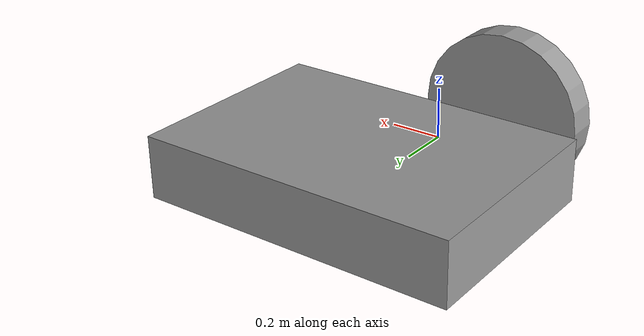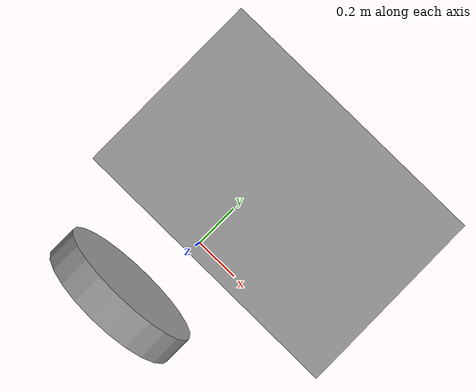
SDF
<?xml version='1.0'?>
<sdf version='1.6'>
  <model name='furiguide_model'>
    <link name='link_2'>
      <pose frame=''>0.08396 0.377328 0 0 -0 0</pose>
      <inertial>
        <mass>0.261553</mass>
        <inertia>
          <ixx>0.0170661</ixx>
          <ixy>0</ixy>
          <ixz>0</ixz>
          <iyy>0.0355383</iyy>
          <iyz>0</iyz>
          <izz>0.0499766</izz>
        </inertia>
        <pose frame=''>0 0 0 0 -0 0</pose>
      </inertial>
      <gravity>1</gravity>
      <self_collide>0</self_collide>
      <kinematic>0</kinematic>
      <visual name='visual'>
        <pose frame=''>0 0 0 0 -0 0</pose>
        <geometry>
          <box>
            <size>1.2531 0.850051 0.245512</size>
          </box>
        </geometry>
        <material>
          <lighting>1</lighting>
          <script>
            <uri>file://media/materials/scripts/gazebo.material</uri>
            <name>Gazebo/Grey</name>
          </script>
          <ambient>0.3 0.3 0.3 1</ambient>
          <diffuse>0.7 0.7 0.7 1</diffuse>
          <specular>0.01 0.01 0.01 1</specular>
          <emissive>0 0 0 1</emissive>
          <shader type='vertex'>
            <normal_map>__default__</normal_map>
          </shader>
        </material>
        <cast_shadows>1</cast_shadows>
        <transparency>0</transparency>
      </visual>
      <collision name='collision'>
        <laser_retro>0</laser_retro>
        <max_contacts>10</max_contacts>
        <pose frame=''>0 0 0 0 -0 0</pose>
        <geometry>
          <box>
            <size>1.2531 0.850051 0.245512</size>
          </box>
        </geometry>
        <surface>
          <friction>
            <ode>
              <mu>1</mu>
              <mu2>1</mu2>
              <fdir1>0 0 0</fdir1>
              <slip1>0</slip1>
              <slip2>0</slip2>
            </ode>
            <torsional>
              <coefficient>1</coefficient>
              <patch_radius>0</patch_radius>
              <surface_radius>0</surface_radius>
              <use_patch_radius>1</use_patch_radius>
              <ode>
                <slip>0</slip>
              </ode>
            </torsional>
          </friction>
          <bounce>
            <restitution_coefficient>0</restitution_coefficient>
            <threshold>1e+06</threshold>
          </bounce>
          <contact>
            <collide_without_contact>0</collide_without_contact>
            <collide_without_contact_bitmask>1</collide_without_contact_bitmask>
            <collide_bitmask>1</collide_bitmask>
            <ode>
              <soft_cfm>0</soft_cfm>
              <soft_erp>0.2</soft_erp>
              <kp>1e+13</kp>
              <kd>1</kd>
              <max_vel>0.01</max_vel>
              <min_depth>0</min_depth>
            </ode>
            <bullet>
              <split_impulse>1</split_impulse>
              <split_impulse_penetration_threshold>-0.01</split_impulse_penetration_threshold>
              <soft_cfm>0</soft_cfm>
              <soft_erp>0.2</soft_erp>
              <kp>1e+13</kp>
              <kd>1</kd>
            </bullet>
          </contact>
        </surface>
      </collision>
    </link>
    <link name='link_5'>
      <pose frame=''>-0.08396 -0.377328 -0 1.5708 -0 0</pose>
      <inertial>
        <mass>0.0570356</mass>
        <inertia>
          <ixx>0.00165223</ixx>
          <ixy>0</ixy>
          <ixz>0</ixz>
          <iyy>0.00165223</iyy>
          <iyz>0</iyz>
          <izz>0.0031456</izz>
        </inertia>
        <pose frame=''>0 0 0 0 -0 0</pose>
      </inertial>
      <visual name='visual'>
        <pose frame=''>0 0 0 0 -0 0</pose>
        <geometry>
          <cylinder>
            <radius>0.33208</radius>
            <length>0.129273</length>
          </cylinder>
        </geometry>
        <material>
          <lighting>1</lighting>
          <script>
            <uri>file://media/materials/scripts/gazebo.material</uri>
            <name>Gazebo/Grey</name>
          </script>
          <ambient>0.3 0.3 0.3 1</ambient>
          <diffuse>0.7 0.7 0.7 1</diffuse>
          <specular>0.01 0.01 0.01 1</specular>
          <emissive>0 0 0 1</emissive>
        </material>
        <cast_shadows>1</cast_shadows>
        <transparency>0</transparency>
      </visual>
      <collision name='collision'>
        <laser_retro>0</laser_retro>
        <max_contacts>10</max_contacts>
        <pose frame=''>0 0 0 0 -0 0</pose>
        <geometry>
          <cylinder>
            <radius>0.33208</radius>
            <length>0.129273</length>
          </cylinder>
        </geometry>
        <surface>
          <friction>
            <ode>
              <mu>1</mu>
              <mu2>1</mu2>
              <fdir1>0 0 0</fdir1>
              <slip1>0</slip1>
              <slip2>0</slip2>
            </ode>
            <torsional>
              <coefficient>1</coefficient>
              <patch_radius>0</patch_radius>
              <surface_radius>0</surface_radius>
              <use_patch_radius>1</use_patch_radius>
              <ode>
                <slip>0</slip>
              </ode>
            </torsional>
          </friction>
          <bounce>
            <restitution_coefficient>0</restitution_coefficient>
            <threshold>1e+06</threshold>
          </bounce>
          <contact>
            <collide_without_contact>0</collide_without_contact>
            <collide_without_contact_bitmask>1</collide_without_contact_bitmask>
            <collide_bitmask>1</collide_bitmask>
            <ode>
              <soft_cfm>0</soft_cfm>
              <soft_erp>0.2</soft_erp>
              <kp>1e+13</kp>
              <kd>1</kd>
              <max_vel>0.01</max_vel>
              <min_depth>0</min_depth>
            </ode>
            <bullet>
              <split_impulse>1</split_impulse>
              <split_impulse_penetration_threshold>-0.01</split_impulse_penetration_threshold>
              <soft_cfm>0</soft_cfm>
              <soft_erp>0.2</soft_erp>
              <kp>1e+13</kp>
              <kd>1</kd>
            </bullet>
          </contact>
        </surface>
      </collision>
    </link>
    <joint name='link_2_JOINT_0' type='revolute'>
      <parent>link_2</parent>
      <child>link_5</child>
      <pose frame=''>0 0 0 0 -0 0</pose>
      <axis>
        <xyz>1 0 0</xyz>
        <use_parent_model_frame>0</use_parent_model_frame>
        <limit>
          <lower>-1.79769e+308</lower>
          <upper>1.79769e+308</upper>
          <effort>-1</effort>
          <velocity>-1</velocity>
        </limit>
        <dynamics>
          <spring_reference>0</spring_reference>
          <spring_stiffness>0</spring_stiffness>
          <damping>0</damping>
        </dynamics>
      </axis>
      <physics>
        <ode>
          <limit>
            <cfm>0</cfm>
            <erp>0.2</erp>
          </limit>
          <suspension>
            <cfm>0</cfm>
            <erp>0.2</erp>
          </suspension>
        </ode>
      </physics>
    </joint>
    <static>0</static>
    <allow_auto_disable>1</allow_auto_disable>
  </model>
</sdf>
